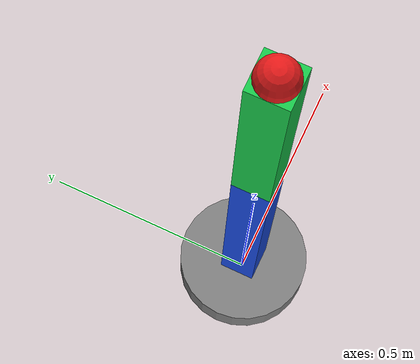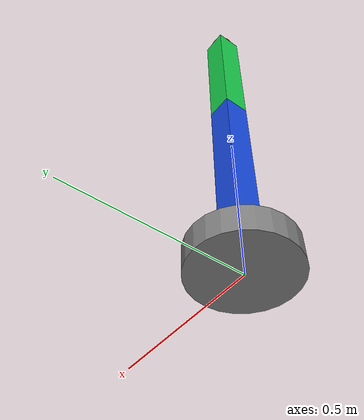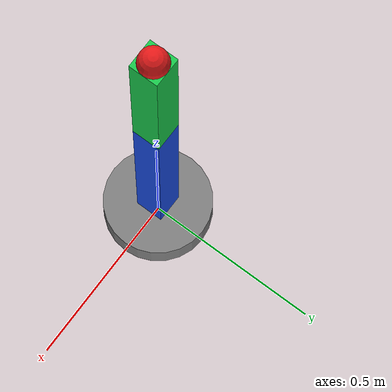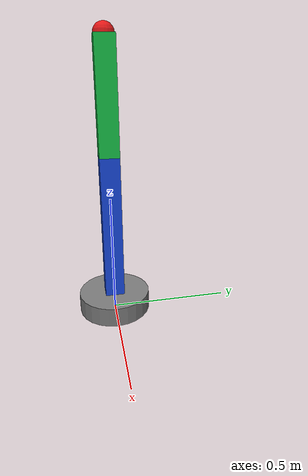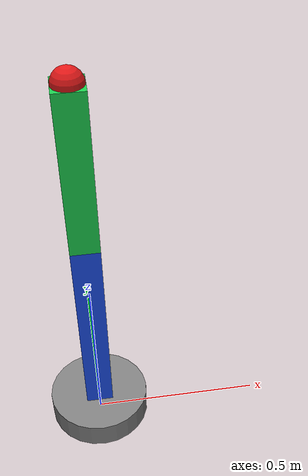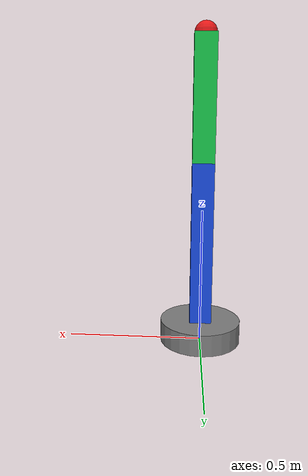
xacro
<?xml version="1.0"?>
<robot name="two_axis_arm" xmlns:xacro="http://www.ros.org/wiki/xacro">

  <!-- Properties -->
  <xacro:property name="base_radius" value="0.15"/>
  <xacro:property name="base_height" value="0.08"/>

  <xacro:property name="link1_length" value="0.6"/>
  <xacro:property name="link2_length" value="0.45"/>
  <xacro:property name="link_width" value="0.08"/>

  <!-- Materials -->
  <material name="gray">
    <color rgba="0.5 0.5 0.5 1.0"/>
  </material>

  <material name="blue">
    <color rgba="0.1 0.3 0.9 1.0"/>
  </material>

  <material name="green">
    <color rgba="0.1 0.8 0.3 1.0"/>
  </material>

  <material name="red">
    <color rgba="0.9 0.1 0.1 1.0"/>
  </material>

  <!-- base_link -->
  <link name="base_link">
    <visual>
      <origin xyz="0 0 ${base_height / 2}" rpy="0 0 0"/>
      <geometry>
        <cylinder radius="${base_radius}" length="${base_height}"/>
      </geometry>
      <material name="gray"/>
    </visual>
  </link>

  <!-- joint1 -->
  <joint name="joint1" type="revolute">
    <parent link="base_link"/>
    <child link="link1"/>

    <!-- base_link 위쪽에 joint1 배치 -->
    <origin xyz="0 0 ${base_height}" rpy="0 0 0"/>

    <!-- y축 기준 회전 -->
    <axis xyz="0 1 0"/>

    <limit lower="-1.57" upper="1.57" effort="10" velocity="1.0"/>
  </joint>

  <!-- link1 -->
  <link name="link1">
    <visual>
      <!-- link1 좌표계 기준으로 z축 방향으로 절반 이동 -->
      <origin xyz="0 0 ${link1_length / 2}" rpy="0 0 0"/>
      <geometry>
        <box size="${link_width} ${link_width} ${link1_length}"/>
      </geometry>
      <material name="blue"/>
    </visual>
  </link>

  <!-- joint2 -->
  <joint name="joint2" type="revolute">
    <parent link="link1"/>
    <child link="link2"/>

    <!-- link1 위쪽 끝에 joint2 배치 -->
    <origin xyz="0 0 ${link1_length}" rpy="0 0 0"/>

    <!-- y축 기준 회전 -->
    <axis xyz="0 1 0"/>

    <limit lower="-2.0" upper="2.0" effort="10" velocity="1.0"/>
  </joint>

  <!-- link2 -->
  <link name="link2">
    <visual>
      <!-- link2 좌표계 기준으로 z축 방향으로 절반 이동 -->
      <origin xyz="0 0 ${link2_length / 2}" rpy="0 0 0"/>
      <geometry>
        <box size="${link_width} ${link_width} ${link2_length}"/>
      </geometry>
      <material name="green"/>
    </visual>
  </link>

  <!-- tool_joint -->
  <joint name="tool_joint" type="fixed">
    <parent link="link2"/>
    <child link="tool_link"/>

    <!-- link2 위쪽 끝에 tool_link 배치 -->
    <origin xyz="0 0 ${link2_length}" rpy="0 0 0"/>
  </joint>

  <!-- tool_link -->
  <link name="tool_link">
    <visual>
      <origin xyz="0 0 0" rpy="0 0 0"/>
      <geometry>
        <sphere radius="0.04"/>
      </geometry>
      <material name="red"/>
    </visual>
  </link>

</robot>
